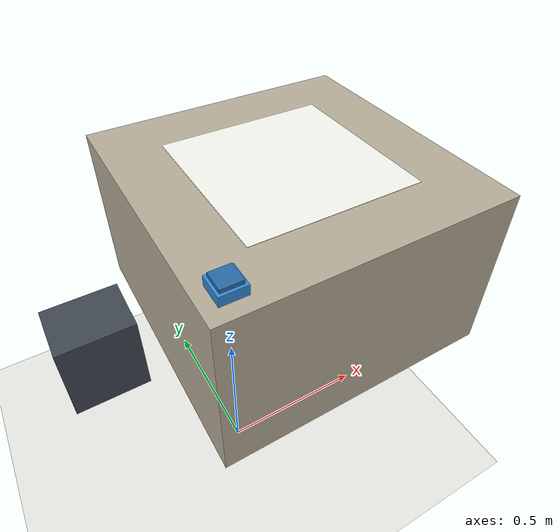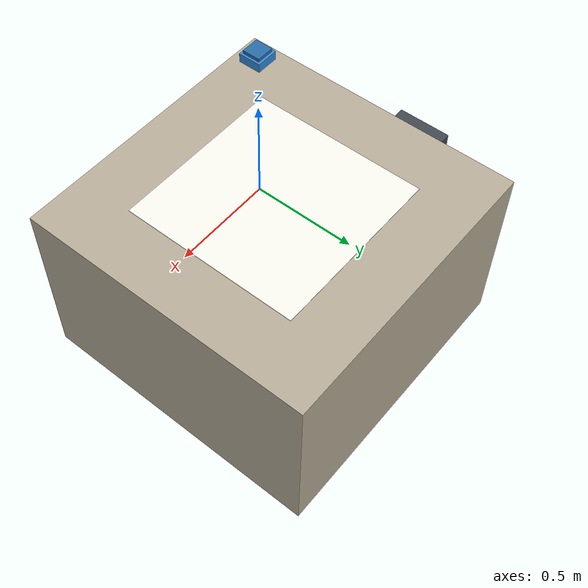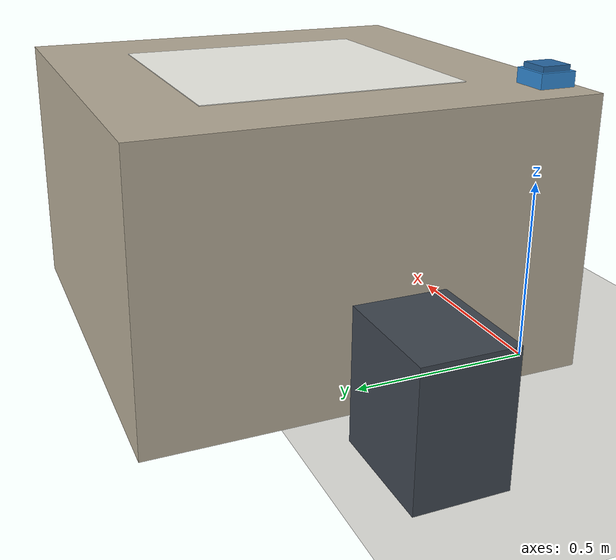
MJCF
<mujoco model="plotter_cell_square_draw">
  <!-- 由 scene.spec.json 组装（mujoco_build.py _plotter_xml，组装规则 R1-R4 见源码） -->
  <option timestep="0.008333" gravity="0 0 -9.81"/>
  <compiler angle="radian" autolimits="true"/>
  <default>
    <joint armature="0.01" frictionloss="0.1"/>
    <geom friction="0.8 0.02 0.001" condim="3"/>
  </default>
  <worldbody>
    <geom name="floor" type="plane" size="0.75 0.75 0.1" rgba="0.92 0.92 0.9 1"/>
    <geom name="work_table" type="box" size="0.6 0.6 0.375"
          pos="0.5 0.5 0.375" rgba="0.72 0.68 0.60 1"/>
    <geom name="paper" type="box" size="0.36 0.36 0.001"
          pos="0.5 0.5 0.751" rgba="0.97 0.97 0.94 1"/>
    <geom name="hmi_panel" type="box" size="0.15 0.12 0.175"
          pos="-0.35 0.5 0.175" contype="0" conaffinity="0"
          rgba="0.25 0.28 0.32 1"/>   <!-- 库缺省外观（spec 未给尺寸） -->
    <!-- 轴链锚点 = 行程起点（轴 pose 为行程中心，R2）；qz=0 笔尖距纸 2mm（R3） -->
    <body name="gantry_base" pos="0 0 0.78">
      <body name="x_carriage" pos="0 0 0">
        <joint name="joint_x" type="slide" axis="1 0 0" range="0 1"
               damping="250"/>
        <geom name="saddle" type="box" size="0.05 0.05 0.02" mass="4"
              contype="0" conaffinity="0" rgba="0.2 0.55 0.85 1"/>
        <body name="y_carriage" pos="0 0 0">
          <joint name="joint_y" type="slide" axis="0 1 0" range="0 1"
                 damping="250"/>
          <geom name="head" type="box" size="0.05 0.05 0.02" mass="3"
                contype="0" conaffinity="0" rgba="0.2 0.55 0.85 1"/>
          <body name="z_carriage" pos="0 0 0">
            <joint name="joint_z" type="slide" axis="0 0 1" range="0 0.01"
                   damping="80"/>
            <geom name="slider" type="box" size="0.04 0.04 0.015" mass="0.4"
                  pos="0 0 0.02" contype="0" conaffinity="0" rgba="0.16 0.42 0.66 1"/>
            <!-- 笔（tool_head 载具为链尾滑块，R3）；笔尖有碰撞：任何故障下停在纸/台面 -->
            <geom name="pen" type="capsule" fromto="0 0 -0.02575 0 0 0"
                  size="0.00025" mass="0.02" rgba="0.85 0.2 0.2 1"/>
          </body>
        </body>
      </body>
    </body>
  </worldbody>
  <actuator>
    <position name="drive_x" joint="joint_x" kp="6000" ctrlrange="0 1"/>
    <position name="drive_y" joint="joint_y" kp="6000" ctrlrange="0 1"/>
    <position name="drive_z" joint="joint_z" kp="4000" ctrlrange="0 0.01"/>
  </actuator>
</mujoco>
